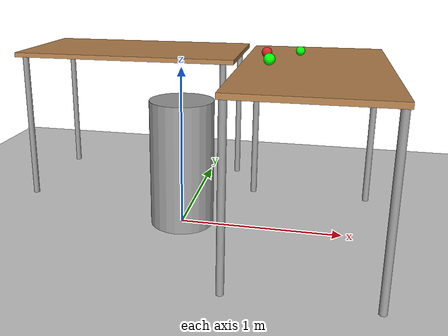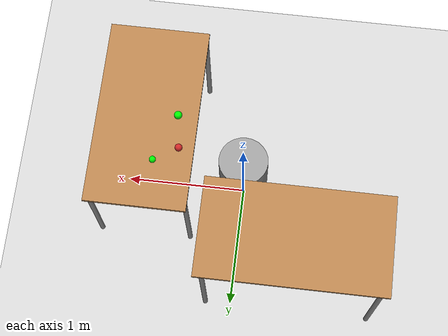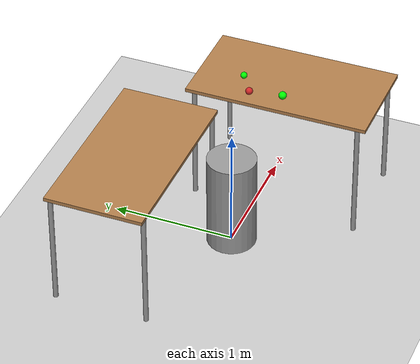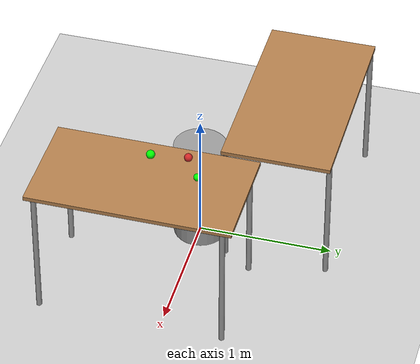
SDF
<sdf version="1.7">
 <world name="default">
  <light name="sun" type="directional">
   <pose>0 0 10 0 -0 0</pose>
   <diffuse>0.8 0.8 0.8 1</diffuse>
   <specular>0.2 0.2 0.2 1</specular>
   <attenuation>
    <range>1000</range>
    <constant>0.9</constant>
    <linear>0.01</linear>
    <quadratic>0.001</quadratic>
   </attenuation>
   <direction>-0.5 0.1 -0.9</direction>
   <spot><inner_angle>0</inner_angle><outer_angle>0</outer_angle><falloff>0</falloff></spot>
  </light>
  <model name="ground_plane">
   <static>1</static>
   <link name="link">
    <collision name="collision">
     <geometry><plane><normal>0 0 1</normal><size>100 100</size></plane></geometry>
     <surface>
      <contact><collide_bitmask>65535</collide_bitmask></contact>
      <friction><ode><mu>100</mu><mu2>50</mu2></ode></friction>
     </surface>
    </collision>
    <visual name="visual">
     <cast_shadows>0</cast_shadows>
     <geometry><plane><normal>0 0 1</normal><size>100 100</size></plane></geometry>
     <material>
      <script><uri>file://media/materials/scripts/gazebo.material</uri><name>Gazebo/Grey</name></script>
     </material>
    </visual>
   </link>
  </model>
  <gravity>0 0 -9.8</gravity>
  <magnetic_field>6e-06 2.3e-05 -4.2e-05</magnetic_field>
  <atmosphere type="adiabatic"/>
  <physics type="ode">
   <max_step_size>0.001</max_step_size>
   <real_time_factor>1</real_time_factor>
   <real_time_update_rate>1000</real_time_update_rate>
  </physics>
  <scene><ambient>0.4 0.4 0.4 1</ambient><background>0.7 0.7 0.7 1</background><shadows>1</shadows></scene>
  <spherical_coordinates>
   <surface_model>EARTH_WGS84</surface_model>
   <latitude_deg>0</latitude_deg>
   <longitude_deg>0</longitude_deg>
   <elevation>0</elevation>
   <heading_deg>0</heading_deg>
  </spherical_coordinates>
  <model name="table">
   <static>1</static>
   <link name="link_table">
    <collision name="surface">
     <pose>0 0 1 0 -0 0</pose>
     <geometry><box><size>1.5 0.8 0.03</size></box></geometry>
     <surface><friction><ode><mu>0.6</mu><mu2>0.6</mu2></ode></friction></surface>
    </collision>
    <visual name="visual1">
     <pose>0 0 1 0 -0 0</pose>
     <geometry><box><size>1.5 0.8 0.03</size></box></geometry>
     <material>
      <script><uri>file://media/materials/scripts/gazebo.material</uri><name>Gazebo/Wood</name></script>
     </material>
    </visual>
    <collision name="front_left_leg">
     <pose>0.68 0.38 0.5 0 -0 0</pose>
     <geometry><cylinder><radius>0.02</radius><length>1</length></cylinder></geometry>
    </collision>
    <visual name="front_left_leg">
     <pose>0.68 0.38 0.5 0 -0 0</pose>
     <geometry><cylinder><radius>0.02</radius><length>1</length></cylinder></geometry>
     <material>
      <script><uri>file://media/materials/scripts/gazebo.material</uri><name>Gazebo/Grey</name></script>
     </material>
    </visual>
    <collision name="front_right_leg">
     <pose>0.68 -0.38 0.5 0 -0 0</pose>
     <geometry><cylinder><radius>0.02</radius><length>1</length></cylinder></geometry>
    </collision>
    <visual name="front_right_leg">
     <pose>0.68 -0.38 0.5 0 -0 0</pose>
     <geometry><cylinder><radius>0.02</radius><length>1</length></cylinder></geometry>
     <material>
      <script><uri>file://media/materials/scripts/gazebo.material</uri><name>Gazebo/Grey</name></script>
     </material>
    </visual>
    <collision name="back_right_leg">
     <pose>-0.68 -0.38 0.5 0 -0 0</pose>
     <geometry><cylinder><radius>0.02</radius><length>1</length></cylinder></geometry>
    </collision>
    <visual name="back_right_leg">
     <pose>-0.68 -0.38 0.5 0 -0 0</pose>
     <geometry><cylinder><radius>0.02</radius><length>1</length></cylinder></geometry>
     <material>
      <script><uri>file://media/materials/scripts/gazebo.material</uri><name>Gazebo/Grey</name></script>
     </material>
    </visual>
    <collision name="back_left_leg">
     <pose>-0.68 0.38 0.5 0 -0 0</pose>
     <geometry><cylinder><radius>0.02</radius><length>1</length></cylinder></geometry>
    </collision>
    <visual name="back_left_leg">
     <pose>-0.68 0.38 0.5 0 -0 0</pose>
     <geometry><cylinder><radius>0.02</radius><length>1</length></cylinder></geometry>
     <material>
      <script><uri>file://media/materials/scripts/gazebo.material</uri><name>Gazebo/Grey</name></script>
     </material>
    </visual>
   </link>
   <pose>-0.470984 0.627518 0 0 -0 0</pose>
  </model>
  <model name="support">
   <link name="link_2">
    <inertial>
     <mass>1</mass>
     <inertia><ixx>0.145833</ixx><ixy>0</ixy><ixz>0</ixz><iyy>0.145833</iyy><iyz>0</iyz><izz>0.125</izz></inertia>
    </inertial>
    <visual name="visual">
     <geometry><cylinder><radius>0.2</radius><length>0.8</length></cylinder></geometry>
     <material>
      <lighting>1</lighting>
      <script><uri>file://media/materials/scripts/gazebo.material</uri><name>Gazebo/Grey</name></script>
      <shader type="pixel"><normal_map>__default__</normal_map></shader>
      <ambient>0.3 0.3 0.3 1</ambient>
      <diffuse>0.7 0.7 0.7 1</diffuse>
      <specular>0.01 0.01 0.01 1</specular>
      <emissive>0 0 0 1</emissive>
     </material>
    </visual>
    <collision name="collision">
     <geometry><cylinder><radius>0.2</radius><length>0.8</length></cylinder></geometry>
     <surface>
      <friction>
       <ode><mu>1</mu><mu2>1</mu2><fdir1>0 0 0</fdir1><slip1>0</slip1><slip2>0</slip2></ode>
       <torsional>
        <coefficient>1</coefficient>
        <patch_radius>0</patch_radius>
        <surface_radius>0</surface_radius>
        <use_patch_radius>1</use_patch_radius>
        <ode><slip>0</slip></ode>
       </torsional>
      </friction>
      <bounce><restitution_coefficient>0</restitution_coefficient><threshold>1e+06</threshold></bounce>
      <contact>
       <collide_without_contact>0</collide_without_contact>
       <collide_without_contact_bitmask>1</collide_without_contact_bitmask>
       <collide_bitmask>1</collide_bitmask>
       <ode>
        <soft_cfm>0</soft_cfm>
        <soft_erp>0.2</soft_erp>
        <kp>1e+13</kp>
        <kd>1</kd>
        <max_vel>0.01</max_vel>
        <min_depth>0</min_depth>
       </ode>
       <bullet>
        <split_impulse>1</split_impulse>
        <split_impulse_penetration_threshold>-0.01</split_impulse_penetration_threshold>
        <soft_cfm>0</soft_cfm>
        <soft_erp>0.2</soft_erp>
        <kp>1e+13</kp>
        <kd>1</kd>
       </bullet>
      </contact>
     </surface>
    </collision>
   </link>
   <static>0</static>
   <pose>0 0 0.399993 1e-06 -1e-06 0</pose>
  </model>
  <model name="red_cube">
   <link name="red_cuboid">
    <inertial>
     <mass>0.1</mass>
     <inertia><ixx>0.0001</ixx><ixy>0</ixy><ixz>0</ixz><iyy>0.0001</iyy><iyz>0</iyz><izz>0.0001</izz></inertia>
    </inertial>
    <collision name="red_cuboid_collision"><geometry><sphere><radius>0.03</radius></sphere></geometry></collision>
    <visual name="red_cuboid_visual">
     <geometry><sphere><radius>0.03</radius></sphere></geometry>
     <material>
      <script><name>Gazebo/Red</name><uri>file://media/materials/scripts/gazebo.material</uri></script>
     </material>
    </visual>
    <surface>
     <friction><ode><mu>4.0</mu><mu2>1.0</mu2></ode></friction>
     <bounce><restitution_coefficient>0.0</restitution_coefficient><threshold>1000.0</threshold></bounce>
     <contact><ode><kp>1.0</kp><kd>1.0</kd></ode></contact>
    </surface>
    <plugin filename="libgazebo_grasp_fix.so" name="gazebo_grasp_fix">
     <arm><arm_name>red_cube</arm_name><palm_link>red_cuboid</palm_link></arm>
     <forces_angle_tolerance>100</forces_angle_tolerance>
     <update_rate>4</update_rate>
     <grip_count_threshold>4</grip_count_threshold>
     <max_grip_count>8</max_grip_count>
     <release_tolerance>0.005</release_tolerance>
     <disable_collisions_on_attach>0</disable_collisions_on_attach>
     <robotNamespace>/</robotNamespace>
    </plugin>
   </link>
   <pose>0.5 0.05 1.09837 0 -0 0</pose>
  </model>
  <model name="table_0">
   <static>1</static>
   <link name="link">
    <collision name="surface">
     <pose>0 0 1 0 -0 0</pose>
     <geometry><box><size>1.5 0.8 0.03</size></box></geometry>
     <surface><friction><ode><mu>0.6</mu><mu2>0.6</mu2></ode></friction></surface>
    </collision>
    <visual name="visual1">
     <pose>0 0 1 0 -0 0</pose>
     <geometry><box><size>1.5 0.8 0.03</size></box></geometry>
     <material>
      <script><uri>file://media/materials/scripts/gazebo.material</uri><name>Gazebo/Wood</name></script>
     </material>
    </visual>
    <collision name="front_left_leg">
     <pose>0.68 0.38 0.5 0 -0 0</pose>
     <geometry><cylinder><radius>0.02</radius><length>1</length></cylinder></geometry>
    </collision>
    <visual name="front_left_leg">
     <pose>0.68 0.38 0.5 0 -0 0</pose>
     <geometry><cylinder><radius>0.02</radius><length>1</length></cylinder></geometry>
     <material>
      <script><uri>file://media/materials/scripts/gazebo.material</uri><name>Gazebo/Grey</name></script>
     </material>
    </visual>
    <collision name="front_right_leg">
     <pose>0.68 -0.38 0.5 0 -0 0</pose>
     <geometry><cylinder><radius>0.02</radius><length>1</length></cylinder></geometry>
    </collision>
    <visual name="front_right_leg">
     <pose>0.68 -0.38 0.5 0 -0 0</pose>
     <geometry><cylinder><radius>0.02</radius><length>1</length></cylinder></geometry>
     <material>
      <script><uri>file://media/materials/scripts/gazebo.material</uri><name>Gazebo/Grey</name></script>
     </material>
    </visual>
    <collision name="back_right_leg">
     <pose>-0.68 -0.38 0.5 0 -0 0</pose>
     <geometry><cylinder><radius>0.02</radius><length>1</length></cylinder></geometry>
    </collision>
    <visual name="back_right_leg">
     <pose>-0.68 -0.38 0.5 0 -0 0</pose>
     <geometry><cylinder><radius>0.02</radius><length>1</length></cylinder></geometry>
     <material>
      <script><uri>file://media/materials/scripts/gazebo.material</uri><name>Gazebo/Grey</name></script>
     </material>
    </visual>
    <collision name="back_left_leg">
     <pose>-0.68 0.38 0.5 0 -0 0</pose>
     <geometry><cylinder><radius>0.02</radius><length>1</length></cylinder></geometry>
    </collision>
    <visual name="back_left_leg">
     <pose>-0.68 0.38 0.5 0 -0 0</pose>
     <geometry><cylinder><radius>0.02</radius><length>1</length></cylinder></geometry>
     <material>
      <script><uri>file://media/materials/scripts/gazebo.material</uri><name>Gazebo/Grey</name></script>
     </material>
    </visual>
   </link>
   <pose>0.78183 -0.204992 0.053368 0 0 -1.57227</pose>
  </model>
  <model name="green_apple">
   <static>0</static>
   <link name="apple_link">
    <visual name="apple_visual">
     <geometry><sphere><radius>0.0321377</radius></sphere></geometry>
     <material><ambient>0 0.8 0 1</ambient><diffuse>0 1 0 1</diffuse><specular>0.1 0.1 0.1 1</specular></material>
    </visual>
    <collision name="apple_collision"><geometry><sphere><radius>0.0321377</radius></sphere></geometry></collision>
    <inertial>
     <mass>0.1</mass>
     <inertia>
      <ixx>5.3333e-05</ixx>
      <iyy>5.3333e-05</iyy>
      <izz>5.3333e-05</izz>
      <ixy>0</ixy>
      <ixz>0</ixz>
      <iyz>0</iyz>
     </inertia>
    </inertial>
   </link>
   <pose>0.538744 -0.216008 1.10051 0 -0 0</pose>
  </model>
  <model name="green_apple_0">
   <static>0</static>
   <link name="apple_link">
    <visual name="apple_visual">
     <geometry><sphere><radius>0.0268498</radius></sphere></geometry>
     <material><ambient>0 0.8 0 1</ambient><diffuse>0 1 0 1</diffuse><specular>0.1 0.1 0.1 1</specular></material>
    </visual>
    <collision name="apple_collision"><geometry><sphere><radius>0.0268498</radius></sphere></geometry></collision>
    <inertial>
     <mass>0.1</mass>
     <inertia>
      <ixx>5.3333e-05</ixx>
      <iyy>5.3333e-05</iyy>
      <izz>5.3333e-05</izz>
      <ixy>0</ixy>
      <ixz>0</ixz>
      <iyz>0</iyz>
     </inertia>
    </inertial>
   </link>
   <pose>0.687587 0.166749 1.09522 0 -0 0</pose>
  </model>
 </world>
</sdf>
